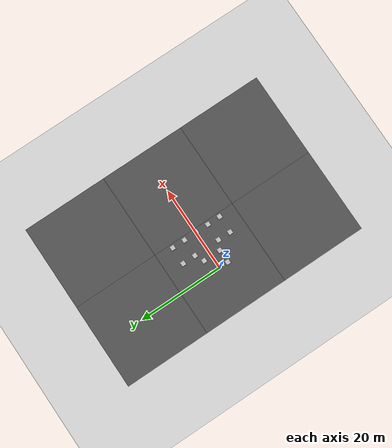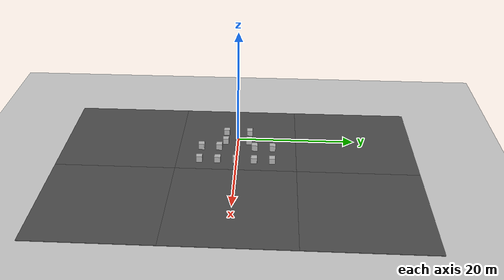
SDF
<sdf version="1.4">
 <world name="default">
  <light name="sun" type="directional">
   <pose>0 0 10 0 -0 0</pose>
   <diffuse>0.8 0.8 0.8 1</diffuse>
   <specular>0.1 0.1 0.1 1</specular>
   <attenuation>
    <range>1000</range>
    <constant>0.9</constant>
    <linear>0.01</linear>
    <quadratic>0.001</quadratic>
   </attenuation>
   <direction>-0.5 0.5 -1</direction>
  </light>
  <plugin name="ros_interface_plugin" filename="librotors_gazebo_ros_interface_plugin.so"/>
  <model name="ground_plane">
   <static>1</static>
   <link name="link">
    <collision name="collision">
     <geometry><plane><normal>0 0 1</normal><size>100 100</size></plane></geometry>
     <surface><friction><ode><mu>100</mu><mu2>50</mu2></ode></friction></surface>
    </collision>
    <visual name="visual">
     <cast_shadows>0</cast_shadows>
     <geometry><plane><normal>0 0 1</normal><size>100 100</size></plane></geometry>
     <material>
      <script><uri>file://media/materials/scripts/gazebo.material</uri><name>Gazebo/Grey</name></script>
     </material>
    </visual>
   </link>
  </model>
  <gravity>0 0 0</gravity>
  <magnetic_field>6e-06 2.3e-05 -4.2e-05</magnetic_field>
  <atmosphere type="adiabatic"/>
  <physics name="default_physics" default="0" type="ode">
   <max_step_size>0.001</max_step_size>
   <real_time_factor>1</real_time_factor>
   <real_time_update_rate>1000</real_time_update_rate>
  </physics>
  <scene><ambient>0.4 0.4 0.4 1</ambient><background>0.7 0.7 0.7 1</background><shadows>1</shadows></scene>
  <spherical_coordinates>
   <surface_model>EARTH_WGS84</surface_model>
   <latitude_deg>0</latitude_deg>
   <longitude_deg>0</longitude_deg>
   <elevation>0</elevation>
   <heading_deg>0</heading_deg>
  </spherical_coordinates>
  <model name="asphalt_plane">
   <static>1</static>
   <link name="link">
    <collision name="collision"><geometry><box><size>20 20 0.1</size></box></geometry></collision>
    <visual name="visual">
     <cast_shadows>0</cast_shadows>
     <geometry><box><size>20 20 0.1</size></box></geometry>
     <material>
      <script>
       <uri>model://asphalt_plane/materials/scripts</uri>
       <uri>model://asphalt_plane/materials/textures</uri>
       <name>vrc/asphalt</name>
      </script>
     </material>
    </visual>
   </link>
  </model>
  <model name="brick_box_3x1x3">
   <static>1</static>
   <link name="chassis">
    <pose>0 0 1.5 0 -0 0</pose>
    <collision name="collision"><geometry><box><size>1 1 1</size></box></geometry></collision>
    <visual name="visual">
     <geometry><mesh><uri>model://brick_box_3x1x3/meshes/simple_box.dae</uri><scale>1 1 1</scale></mesh></geometry>
     <material>
      <script>
       <uri>model://brick_box_3x1x3/materials/scripts</uri>
       <uri>model://brick_box_3x1x3/materials/textures</uri>
       <name>BrickBox/Diffuse</name>
      </script>
     </material>
    </visual>
   </link>
   <pose>0 -2 0 0 -0 0</pose>
  </model>
  <model name="brick_box_3x1x3_0">
   <static>1</static>
   <link name="chassis">
    <pose>0 0 1.5 0 -0 0</pose>
    <collision name="collision"><geometry><box><size>1 1 1</size></box></geometry></collision>
    <visual name="visual">
     <geometry><mesh><uri>model://brick_box_3x1x3/meshes/simple_box.dae</uri><scale>1 1 1</scale></mesh></geometry>
     <material>
      <script>
       <uri>model://brick_box_3x1x3/materials/scripts</uri>
       <uri>model://brick_box_3x1x3/materials/textures</uri>
       <name>BrickBox/Diffuse</name>
      </script>
     </material>
    </visual>
   </link>
   <pose>0 2 0 0 -0 0</pose>
  </model>
  <model name="brick_box_3x1x3_1">
   <static>1</static>
   <link name="chassis">
    <pose>0 0 1.5 0 -0 0</pose>
    <collision name="collision"><geometry><box><size>1 1 1</size></box></geometry></collision>
    <visual name="visual">
     <geometry><mesh><uri>model://brick_box_3x1x3/meshes/simple_box.dae</uri><scale>1 1 1</scale></mesh></geometry>
     <material>
      <script>
       <uri>model://brick_box_3x1x3/materials/scripts</uri>
       <uri>model://brick_box_3x1x3/materials/textures</uri>
       <name>BrickBox/Diffuse</name>
      </script>
     </material>
    </visual>
   </link>
   <pose>3 -2 0 0 -0 0</pose>
  </model>
  <model name="brick_box_3x1x3_2">
   <static>1</static>
   <link name="chassis">
    <pose>0 0 1.5 0 -0 0</pose>
    <collision name="collision"><geometry><box><size>1 1 1</size></box></geometry></collision>
    <visual name="visual">
     <geometry><mesh><uri>model://brick_box_3x1x3/meshes/simple_box.dae</uri><scale>1 1 1</scale></mesh></geometry>
     <material>
      <script>
       <uri>model://brick_box_3x1x3/materials/scripts</uri>
       <uri>model://brick_box_3x1x3/materials/textures</uri>
       <name>BrickBox/Diffuse</name>
      </script>
     </material>
    </visual>
   </link>
   <pose>3 2 0 0 -0 0</pose>
  </model>
  <model name="brick_box_3x1x3_3">
   <static>1</static>
   <link name="chassis">
    <pose>0 0 1.5 0 -0 0</pose>
    <collision name="collision"><geometry><box><size>1 1 1</size></box></geometry></collision>
    <visual name="visual">
     <geometry><mesh><uri>model://brick_box_3x1x3/meshes/simple_box.dae</uri><scale>1 1 1</scale></mesh></geometry>
     <material>
      <script>
       <uri>model://brick_box_3x1x3/materials/scripts</uri>
       <uri>model://brick_box_3x1x3/materials/textures</uri>
       <name>BrickBox/Diffuse</name>
      </script>
     </material>
    </visual>
   </link>
   <pose>5 -3 0 0 -0 1.5708</pose>
  </model>
  <model name="brick_box_3x1x3_4">
   <static>1</static>
   <link name="chassis">
    <pose>0 0 1.5 0 -0 0</pose>
    <collision name="collision"><geometry><box><size>1 1 1</size></box></geometry></collision>
    <visual name="visual">
     <geometry><mesh><uri>model://brick_box_3x1x3/meshes/simple_box.dae</uri><scale>1 1 1</scale></mesh></geometry>
     <material>
      <script>
       <uri>model://brick_box_3x1x3/materials/scripts</uri>
       <uri>model://brick_box_3x1x3/materials/textures</uri>
       <name>BrickBox/Diffuse</name>
      </script>
     </material>
    </visual>
   </link>
   <pose>9 -3 0 0 -0 1.5708</pose>
  </model>
  <model name="brick_box_3x1x3_5">
   <static>1</static>
   <link name="chassis">
    <pose>0 0 1.5 0 -0 0</pose>
    <collision name="collision"><geometry><box><size>1 1 1</size></box></geometry></collision>
    <visual name="visual">
     <geometry><mesh><uri>model://brick_box_3x1x3/meshes/simple_box.dae</uri><scale>1 1 1</scale></mesh></geometry>
     <material>
      <script>
       <uri>model://brick_box_3x1x3/materials/scripts</uri>
       <uri>model://brick_box_3x1x3/materials/textures</uri>
       <name>BrickBox/Diffuse</name>
      </script>
     </material>
    </visual>
   </link>
   <pose>9 0 0 0 -0 1.5708</pose>
  </model>
  <model name="brick_box_3x1x3_6">
   <static>1</static>
   <link name="chassis">
    <pose>0 0 1.5 0 -0 0</pose>
    <collision name="collision"><geometry><box><size>1 1 1</size></box></geometry></collision>
    <visual name="visual">
     <geometry><mesh><uri>model://brick_box_3x1x3/meshes/simple_box.dae</uri><scale>1 1 1</scale></mesh></geometry>
     <material>
      <script>
       <uri>model://brick_box_3x1x3/materials/scripts</uri>
       <uri>model://brick_box_3x1x3/materials/textures</uri>
       <name>BrickBox/Diffuse</name>
      </script>
     </material>
    </visual>
   </link>
   <pose>5 3 0 0 -0 1.5708</pose>
  </model>
  <model name="brick_box_3x1x3_7">
   <static>1</static>
   <link name="chassis">
    <pose>0 0 1.5 0 -0 0</pose>
    <collision name="collision"><geometry><box><size>1 1 1</size></box></geometry></collision>
    <visual name="visual">
     <geometry><mesh><uri>model://brick_box_3x1x3/meshes/simple_box.dae</uri><scale>1 1 1</scale></mesh></geometry>
     <material>
      <script>
       <uri>model://brick_box_3x1x3/materials/scripts</uri>
       <uri>model://brick_box_3x1x3/materials/textures</uri>
       <name>BrickBox/Diffuse</name>
      </script>
     </material>
    </visual>
   </link>
   <pose>9 3 0 0 -0 1.5708</pose>
  </model>
  <model name="brick_box_3x1x3_8">
   <static>1</static>
   <link name="chassis">
    <pose>0 0 1.5 0 -0 0</pose>
    <collision name="collision"><geometry><box><size>1 1 1</size></box></geometry></collision>
    <visual name="visual">
     <geometry><mesh><uri>model://brick_box_3x1x3/meshes/simple_box.dae</uri><scale>1 1 1</scale></mesh></geometry>
     <material>
      <script>
       <uri>model://brick_box_3x1x3/materials/scripts</uri>
       <uri>model://brick_box_3x1x3/materials/textures</uri>
       <name>BrickBox/Diffuse</name>
      </script>
     </material>
    </visual>
   </link>
   <pose>5 6 0 0 -0 1.5708</pose>
  </model>
  <model name="brick_box_3x1x3_9">
   <static>1</static>
   <link name="chassis">
    <pose>0 0 1.5 0 -0 0</pose>
    <collision name="collision"><geometry><box><size>1 1 1</size></box></geometry></collision>
    <visual name="visual">
     <geometry><mesh><uri>model://brick_box_3x1x3/meshes/simple_box.dae</uri><scale>1 1 1</scale></mesh></geometry>
     <material>
      <script>
       <uri>model://brick_box_3x1x3/materials/scripts</uri>
       <uri>model://brick_box_3x1x3/materials/textures</uri>
       <name>BrickBox/Diffuse</name>
      </script>
     </material>
    </visual>
   </link>
   <pose>9 6 0 0 -0 1.5708</pose>
  </model>
  <model name="brick_box_3x1x3_10">
   <static>1</static>
   <link name="chassis">
    <pose>0 0 1.5 0 -0 0</pose>
    <collision name="collision"><geometry><box><size>1 1 1</size></box></geometry></collision>
    <visual name="visual">
     <geometry><mesh><uri>model://brick_box_3x1x3/meshes/simple_box.dae</uri><scale>1 1 1</scale></mesh></geometry>
     <material>
      <script>
       <uri>model://brick_box_3x1x3/materials/scripts</uri>
       <uri>model://brick_box_3x1x3/materials/textures</uri>
       <name>BrickBox/Diffuse</name>
      </script>
     </material>
    </visual>
   </link>
   <pose>9 -6 0 0 -0 1.5708</pose>
  </model>
  <model name="brick_box_3x1x3_11">
   <static>1</static>
   <link name="chassis">
    <pose>0 0 1.5 0 -0 0</pose>
    <collision name="collision"><geometry><box><size>1 1 1</size></box></geometry></collision>
    <visual name="visual">
     <geometry><mesh><uri>model://brick_box_3x1x3/meshes/simple_box.dae</uri><scale>1 1 1</scale></mesh></geometry>
     <material>
      <script>
       <uri>model://brick_box_3x1x3/materials/scripts</uri>
       <uri>model://brick_box_3x1x3/materials/textures</uri>
       <name>BrickBox/Diffuse</name>
      </script>
     </material>
    </visual>
   </link>
   <pose>5 -6 0 0 -0 1.5708</pose>
  </model>
  <model name="asphalt_plane_0">
   <static>1</static>
   <link name="link">
    <collision name="collision"><geometry><box><size>20 20 0.1</size></box></geometry></collision>
    <visual name="visual">
     <cast_shadows>0</cast_shadows>
     <geometry><box><size>20 20 0.1</size></box></geometry>
     <material>
      <script>
       <uri>model://asphalt_plane/materials/scripts</uri>
       <uri>model://asphalt_plane/materials/textures</uri>
       <name>vrc/asphalt</name>
      </script>
     </material>
    </visual>
   </link>
   <pose>0 -20 0 0 -0 0</pose>
  </model>
  <model name="asphalt_plane_1">
   <static>1</static>
   <link name="link">
    <collision name="collision"><geometry><box><size>20 20 0.1</size></box></geometry></collision>
    <visual name="visual">
     <cast_shadows>0</cast_shadows>
     <geometry><box><size>20 20 0.1</size></box></geometry>
     <material>
      <script>
       <uri>model://asphalt_plane/materials/scripts</uri>
       <uri>model://asphalt_plane/materials/textures</uri>
       <name>vrc/asphalt</name>
      </script>
     </material>
    </visual>
   </link>
   <pose>0 20 0 0 -0 0</pose>
  </model>
  <model name="asphalt_plane_2">
   <static>1</static>
   <link name="link">
    <collision name="collision"><geometry><box><size>20 20 0.1</size></box></geometry></collision>
    <visual name="visual">
     <cast_shadows>0</cast_shadows>
     <geometry><box><size>20 20 0.1</size></box></geometry>
     <material>
      <script>
       <uri>model://asphalt_plane/materials/scripts</uri>
       <uri>model://asphalt_plane/materials/textures</uri>
       <name>vrc/asphalt</name>
      </script>
     </material>
    </visual>
   </link>
   <pose>20 -20 0 0 -0 0</pose>
  </model>
  <model name="asphalt_plane_3">
   <static>1</static>
   <link name="link">
    <collision name="collision"><geometry><box><size>20 20 0.1</size></box></geometry></collision>
    <visual name="visual">
     <cast_shadows>0</cast_shadows>
     <geometry><box><size>20 20 0.1</size></box></geometry>
     <material>
      <script>
       <uri>model://asphalt_plane/materials/scripts</uri>
       <uri>model://asphalt_plane/materials/textures</uri>
       <name>vrc/asphalt</name>
      </script>
     </material>
    </visual>
   </link>
   <pose>20 0 0 0 -0 0</pose>
  </model>
  <model name="asphalt_plane_4">
   <static>1</static>
   <link name="link">
    <collision name="collision"><geometry><box><size>20 20 0.1</size></box></geometry></collision>
    <visual name="visual">
     <cast_shadows>0</cast_shadows>
     <geometry><box><size>20 20 0.1</size></box></geometry>
     <material>
      <script>
       <uri>model://asphalt_plane/materials/scripts</uri>
       <uri>model://asphalt_plane/materials/textures</uri>
       <name>vrc/asphalt</name>
      </script>
     </material>
    </visual>
   </link>
   <pose>20 20 0 0 -0 0</pose>
  </model>
 </world>
</sdf>
